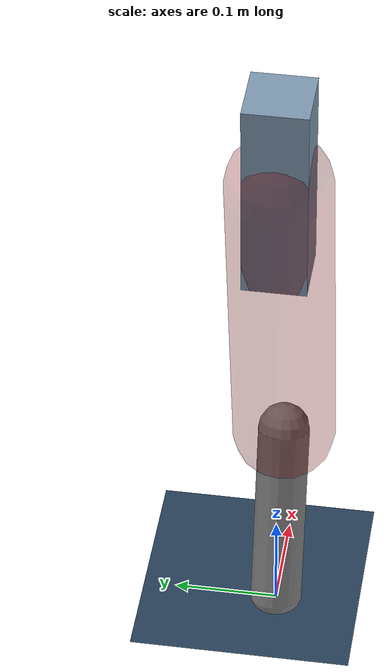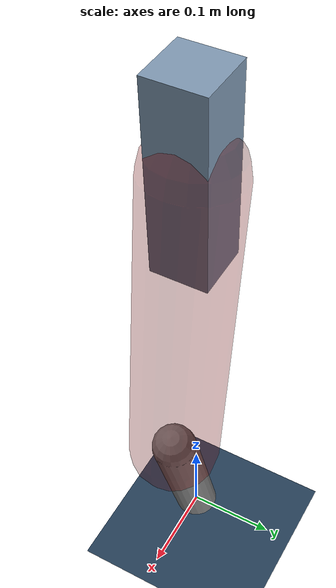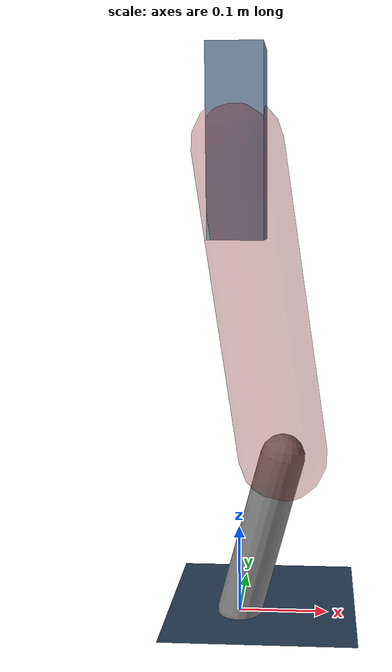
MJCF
<mujoco model="Hopper2D">
	<compiler inertiafromgeom="true" angle="radian" />
	<option timestep="0.001" integrator="implicit" cone="elliptic" solver="Newton" tolerance="1e-10" />

	<default>
		<geom contype="1" conaffinity="1" condim="3" friction="2 0.005 0.0001" solref="0.005 1" />
		<joint limited="true" damping="0.1" />
	</default>

	<asset>
		<texture name="skybox" type="skybox" builtin="gradient" rgb1=".4 .6 .8" rgb2="0 0 0" width="800" height="800" />
		<texture name="grid" type="2d" builtin="checker" rgb1=".1 .2 .3" rgb2=".2 .3 .4" width="300" height="300" mark="edge" markrgb=".2 .3 .4" />
		<material name="ground" texture="grid" texrepeat="1 1" texuniform="true" reflectance="0.1" />
		<material name="leg" rgba="0.5 0.6 0.7 1" />
	</asset>

	<worldbody>

		<geom name="floor" type="plane" size="5 5 0.25" material="ground" />

		<light directional="false" diffuse="0.8 0.8 0.8" specular="0.3 0.3 0.3" pos="0 0 2" dir="0 0 -1" />
		<light mode="targetbodycom" target="base" directional="false" diffuse="0.8 0.8 0.8" specular="0.3 0.3 0.3" pos="0 0 2" dir="0 0 -1" />

		<camera name="fixed" pos="0 -2 1" xyaxes="1 0 0 0 0 1" />
		<camera name="tracking" mode="trackcom" pos="0 -3 1" />

		<body name="root" pos="0 0 0.5221736991453929">
			<joint name="slide_x" type="slide" axis="1 0 0" range="-100 100" />
			<joint name="slide_z" type="slide" axis="0 0 1" range="0 10" />

			<body name="base" pos="0 0 0">
				<geom name="torso" type="box" size="0.03 0.03 0.1" mass="3.1900000000000004" material="leg" />

				<body name="link1" pos="0 0 0" euler="0 1.4272540097756834 0">
					<joint type="hinge" axis="0 -1 0" pos="0 0 0" name="hinge1" limited="true" range="-3.14 3.14" stiffness="0" damping="0.1" />
					<geom name="thigh" type="capsule" fromto="0 0 0 0.3429819033022643 0 0" size="0.05" rgba="0.5 0 0 0.3" mass="1.10694932924634" />

					<body name="link2" pos="0.3429819033022643 0 0" euler="0 0.4058729951762748 0">
						<joint type="hinge" axis="0 -1 0" pos="0 0 0" name="hinge2" limited="true" range="-3.14 3.14" stiffness="0" damping="0.1" />
						<geom name="shank" type="capsule" fromto="0 0 0 0.18919179584312856 0 0" size="0.025" mass="0.39175343667450285" />

					</body>
				</body>
			</body>
		</body>
	</worldbody>

	<actuator>
		<motor name="torque1" joint="hinge1" ctrlrange="-133.63526902787302 133.63526902787302" ctrllimited="true" gear="1" />
		<motor name="torque2" joint="hinge2" ctrlrange="-83.55000153689888 83.55000153689888" ctrllimited="true" gear="1" />
	</actuator>
</mujoco>
